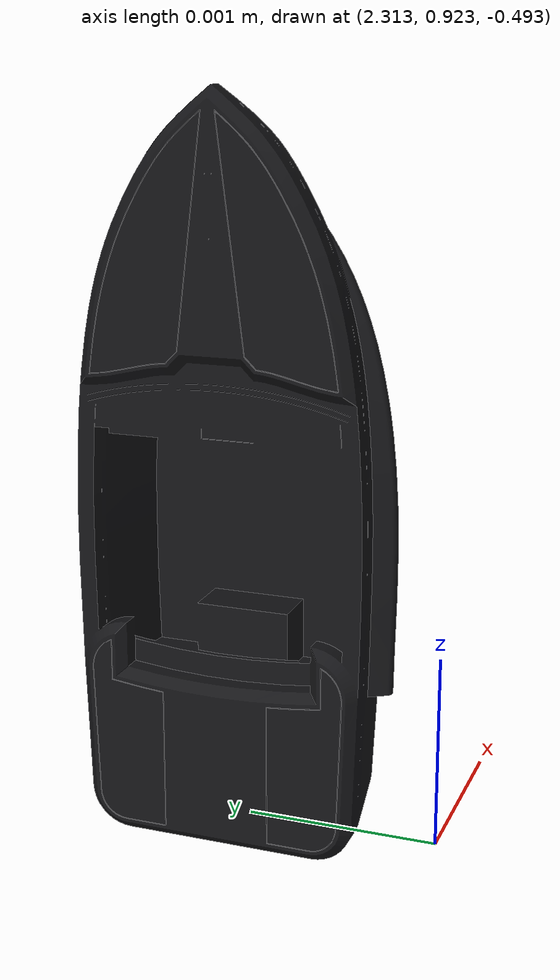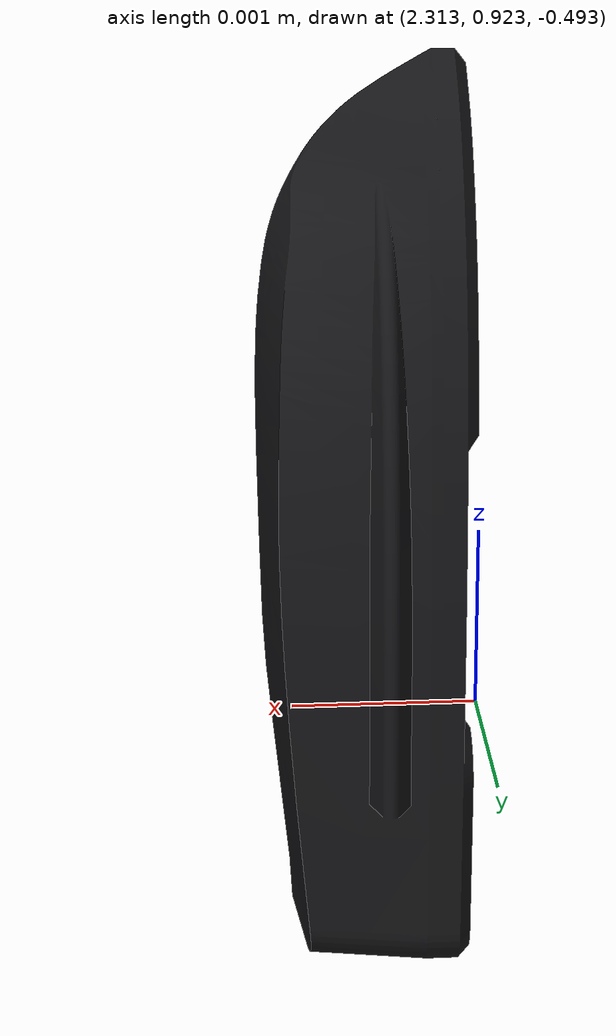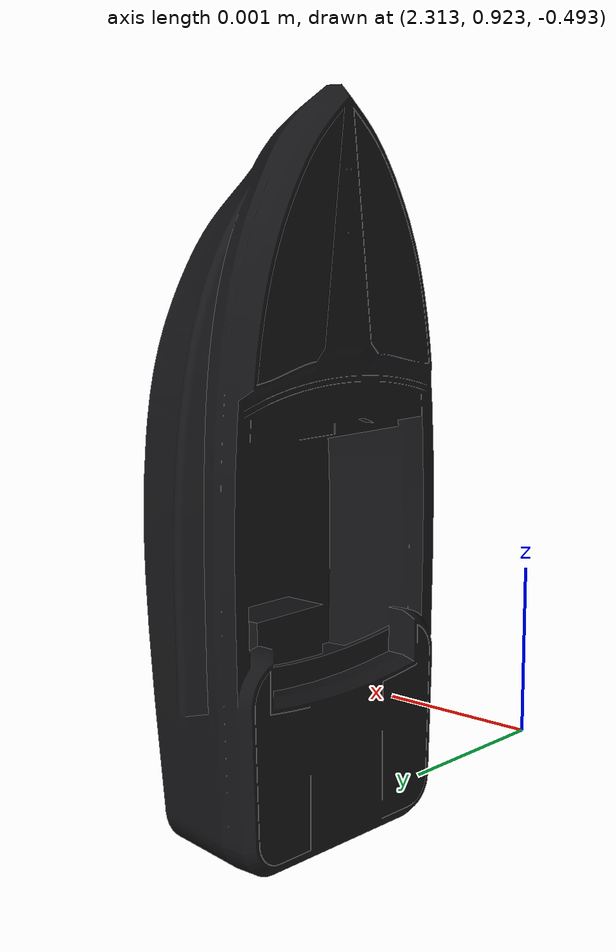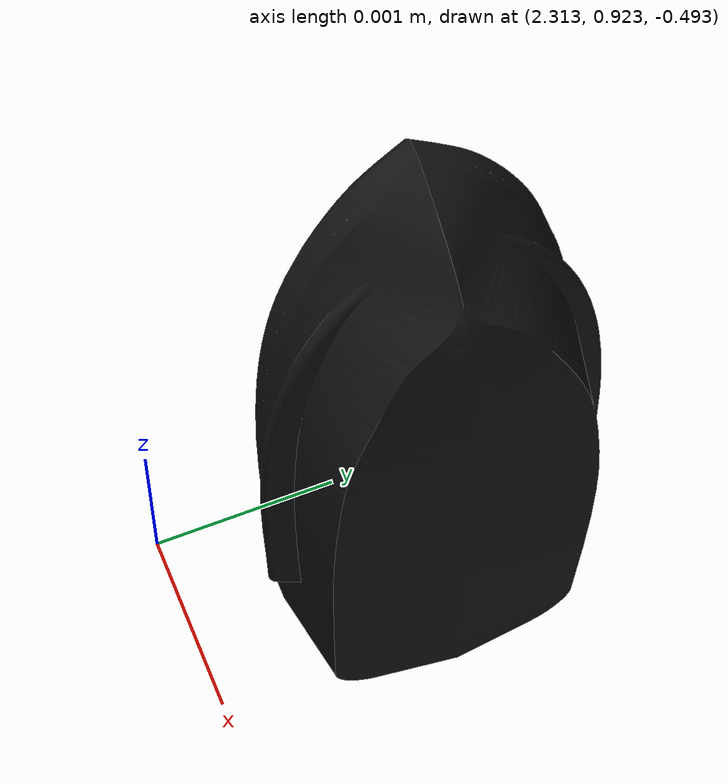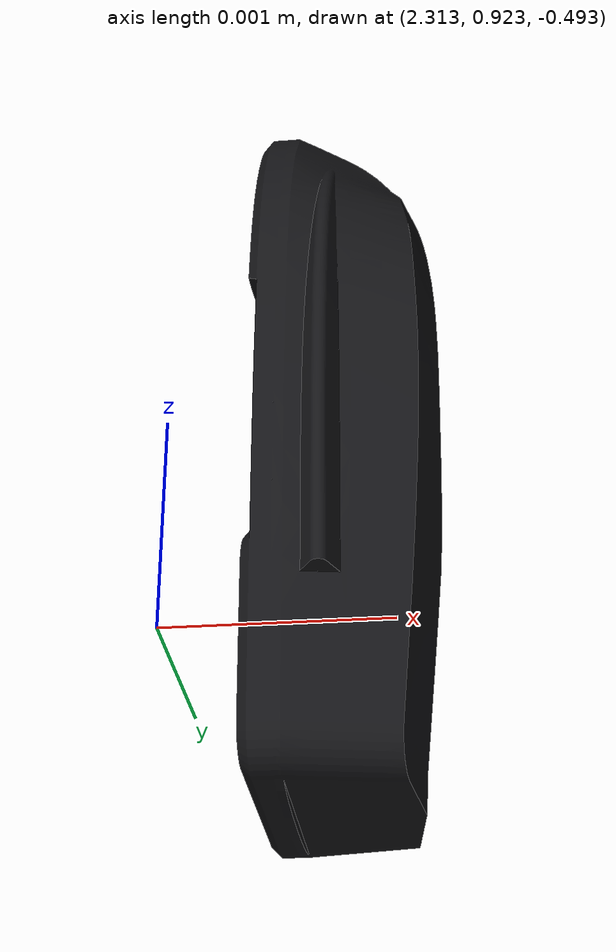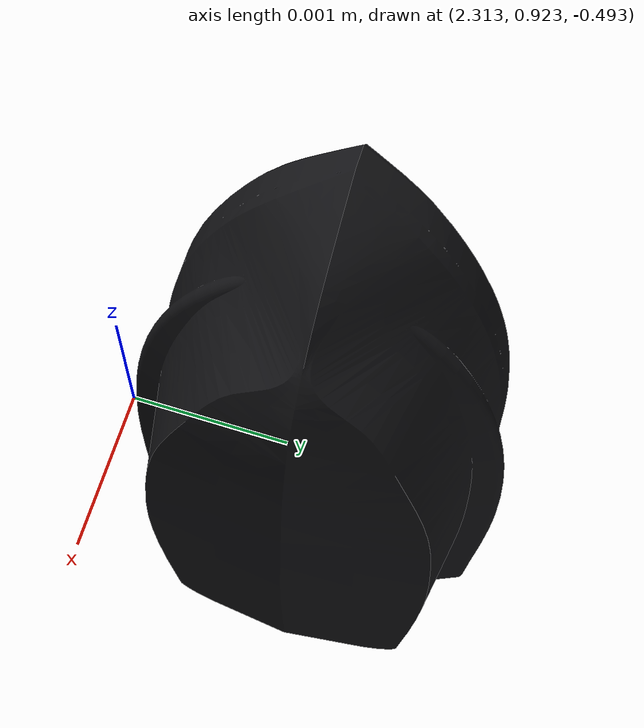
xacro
<?xml version="1.0"?>
<robot xmlns:xacro="http://ros.org/wiki/xacro" name="my_boat">

  <!-- Namespace arg (kept for parity with wamv_base.urdf.xacro). -->
  <xacro:arg name="namespace" default="my_boat"/>
  <xacro:property name="namespace" value="$(arg namespace)" scope="global"/>

  <xacro:property name="boat_mass" value="420.0"/>          <!-- kg -->

  <!-- Centre of gravity in the CAD/STL frame (millimetres). base_link is
       placed here. Defaults = hull volume centroid (Y matches the report). -->
  <xacro:property name="cg_x_mm" value="924.5"/>            <!-- CAD X lateral      -->
  <xacro:property name="cg_y_mm" value="491.6"/>            <!-- CAD Y vertical     -->
  <xacro:property name="cg_z_mm" value="2314.5"/>           <!-- CAD Z longitudinal -->

  <xacro:property name="mesh_scale" value="0.001"/>
  <xacro:property name="mesh_rpy"   value="1.5708 0 -1.5708"/>  <!-- +Rz(pi) flip -->
  <!-- xyz = Rz(pi) * (-R*scale*CG) -> ROS x & y negated, z unchanged -->
  <xacro:property name="mesh_off_x" value="${ cg_z_mm*mesh_scale}"/>
  <xacro:property name="mesh_off_y" value="${ cg_x_mm*mesh_scale}"/>
  <xacro:property name="mesh_off_z" value="${-cg_y_mm*mesh_scale}"/>

  <xacro:property name="ixx" value="100.22"/>
  <xacro:property name="iyy" value="606.43"/>
  <xacro:property name="izz" value="652.79"/>
  <xacro:property name="ixy" value="0.0"/>
  <xacro:property name="ixz" value="5.48"/>
  <xacro:property name="iyz" value="0.0"/>

  <link name="${namespace}/base_link">

    <!-- Inertial: CoM at the base_link origin (= CG). -->
    <inertial>
      <origin xyz="0 0 0" rpy="0 0 0"/>
      <mass value="${boat_mass}"/>
      <inertia ixx="${ixx}" ixy="${ixy}" ixz="${ixz}"
                            iyy="${iyy}" iyz="${iyz}"
                                         izz="${izz}"/>
    </inertial>

    <!-- Visual: the imported STL hull, scaled, rotated and CG-aligned. -->
    <visual name="hull_visual">
      <origin xyz="${mesh_off_x} ${mesh_off_y} ${mesh_off_z}" rpy="${mesh_rpy}"/>
      <!-- Resolved via GZ_SIM_RESOURCE_PATH (description hook registers
           share/my_boat_description/models). -->
      <geometry>
        <mesh filename="model://my_boat/mesh/my_boat_hull.stl"
              scale="${mesh_scale} ${mesh_scale} ${mesh_scale}"/>
      </geometry>
      <!-- STL carries no colour; give the hull a near-black material.
           0.08 rather than 0.0: pure black renders flat and dead on
           video, this still reads as black but catches highlights. -->
      <material name="hull_black">
        <color rgba="0.08 0.08 0.09 1.0"/>
      </material>
    </visual>

    <collision name="hull_collision">
      <origin xyz="0.23 0.0 -0.025" rpy="0 0 0"/>
      <geometry>
        <box size="4.0 1.7 0.85"/>
      </geometry>
    </collision>

  </link>

  <!-- gz material so the hull also renders coloured in Gazebo. -->
  <gazebo reference="${namespace}/base_link">
    <visual>
      <material>
        <ambient>0.06 0.06 0.07 1.0</ambient>
        <diffuse>0.08 0.08 0.09 1.0</diffuse>
        <specular>0.35 0.35 0.37 1.0</specular>
      </material>
    </visual>
  </gazebo>

  <!-- Opt the whole model in to Gazebo's wind system (USVWind lives in the
       world and only pushes links/models that enable wind). Mirrors WAM-V. -->
  <gazebo>
    <enable_wind>true</enable_wind>
  </gazebo>

</robot>
